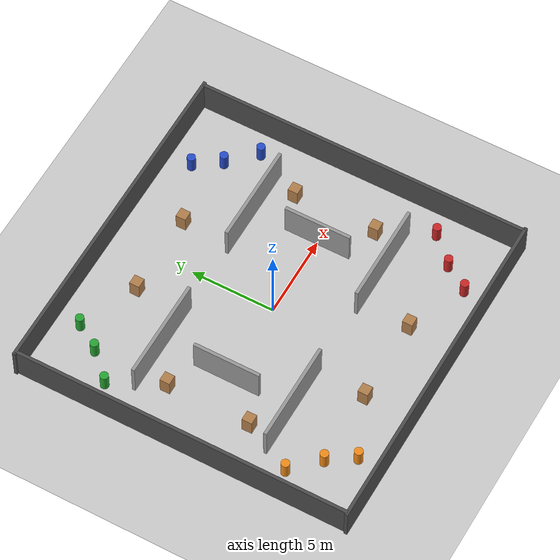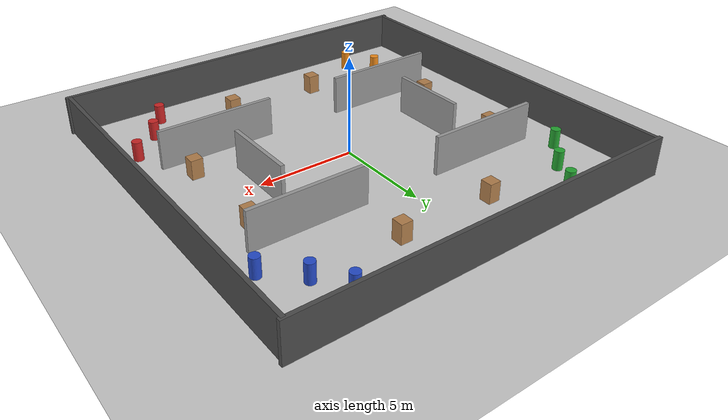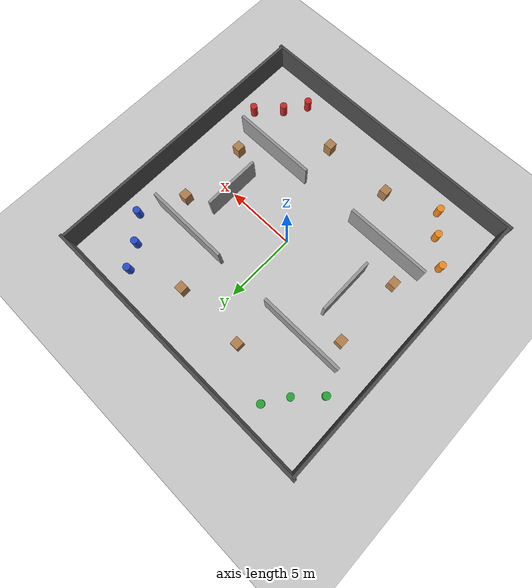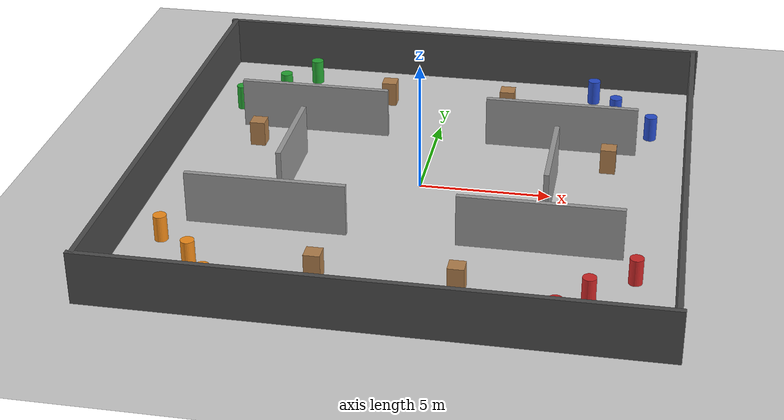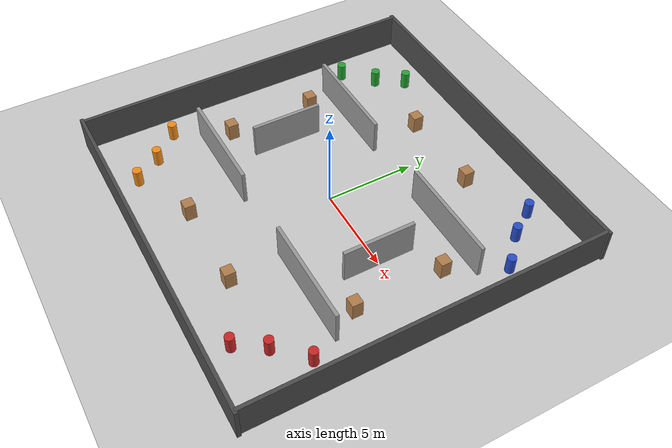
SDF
<?xml version="1.0" ?>
<sdf version="1.6">
  <world name="exploration_world">

    <!-- ═══════════════════════════════════════════════════
         PHYSIQUE & SCÈNE
         ═══════════════════════════════════════════════ -->
    <physics type="ode">
      <real_time_update_rate>1000</real_time_update_rate>
      <max_step_size>0.001</max_step_size>
      <real_time_factor>1</real_time_factor>
      <ode>
        <solver>
          <type>quick</type>
          <iters>150</iters>
          <sor>1.4</sor>
        </solver>
        <constraints>
          <cfm>1e-05</cfm>
          <erp>0.2</erp>
          <contact_max_correcting_vel>2000</contact_max_correcting_vel>
          <contact_surface_layer>0.01</contact_surface_layer>
        </constraints>
      </ode>
    </physics>

    <scene>
      <ambient>0.4 0.4 0.4 1</ambient>
      <background>0.7 0.7 0.7 1</background>
      <shadows>0</shadows>
    </scene>

    <gravity>0 0 -9.8</gravity>
    <atmosphere type="adiabatic"/>
    <wind/>

    <!-- Caméra vue de dessus pour bien voir toute la salle -->
    <gui fullscreen="0">
      <camera name="user_camera">
        <pose>0 0 45 0 1.5707 0</pose>
        <view_controller>orbit</view_controller>
        <projection_type>perspective</projection_type>
      </camera>
    </gui>

    <!-- ═══════════════════════════════════════════════════
         LUMIÈRES
         ═══════════════════════════════════════════════ -->
    <light name="sun" type="directional">
      <cast_shadows>1</cast_shadows>
      <pose>0 0 15 0 0 0</pose>
      <diffuse>0.9 0.9 0.9 1</diffuse>
      <specular>0.2 0.2 0.2 1</specular>
      <attenuation>
        <range>1000</range>
        <constant>0.9</constant>
        <linear>0.01</linear>
        <quadratic>0.001</quadratic>
      </attenuation>
      <direction>-0.3 0.1 -0.9</direction>
    </light>

    <light name="light_center" type="point">
      <pose>0 0 4 0 0 0</pose>
      <diffuse>0.6 0.6 0.6 1</diffuse>
      <specular>0.1 0.1 0.1 1</specular>
      <attenuation>
        <range>30</range>
        <constant>0.5</constant>
        <linear>0.01</linear>
        <quadratic>0.001</quadratic>
      </attenuation>
      <cast_shadows>0</cast_shadows>
    </light>

    <!-- ═══════════════════════════════════════════════════
         SOL
         ═══════════════════════════════════════════════ -->
    <model name="ground_plane">
      <static>1</static>
      <link name="link">
        <collision name="collision">
          <geometry>
            <plane><normal>0 0 1</normal><size>100 100</size></plane>
          </geometry>
          <surface>
            <friction>
              <ode><mu>100</mu><mu2>50</mu2></ode>
            </friction>
          </surface>
        </collision>
        <visual name="visual">
          <cast_shadows>0</cast_shadows>
          <geometry>
            <plane><normal>0 0 1</normal><size>100 100</size></plane>
          </geometry>
          <material>
            <script>
              <uri>file://media/materials/scripts/gazebo.material</uri>
              <name>Gazebo/Grey</name>
            </script>
          </material>
        </visual>
      </link>
    </model>

    <!-- Mur Nord (y = +10) -->
    <model name="wall_north">
      <static>1</static>
      <pose>0 10 1 0 0 0</pose>
      <link name="link">
        <collision name="col">
          <geometry><box><size>20.4 0.2 2</size></box></geometry>
        </collision>
        <visual name="vis">
          <geometry><box><size>20.4 0.2 2</size></box></geometry>
          <material><script>
            <uri>file://media/materials/scripts/gazebo.material</uri>
            <name>Gazebo/DarkGrey</name>
          </script></material>
        </visual>
      </link>
    </model>

    <!-- Mur Sud (y = -10) -->
    <model name="wall_south">
      <static>1</static>
      <pose>0 -10 1 0 0 0</pose>
      <link name="link">
        <collision name="col">
          <geometry><box><size>20.4 0.2 2</size></box></geometry>
        </collision>
        <visual name="vis">
          <geometry><box><size>20.4 0.2 2</size></box></geometry>
          <material><script>
            <uri>file://media/materials/scripts/gazebo.material</uri>
            <name>Gazebo/DarkGrey</name>
          </script></material>
        </visual>
      </link>
    </model>

    <!-- Mur Est (x = +10) -->
    <model name="wall_east">
      <static>1</static>
      <pose>10 0 1 0 0 0</pose>
      <link name="link">
        <collision name="col">
          <geometry><box><size>0.2 20 2</size></box></geometry>
        </collision>
        <visual name="vis">
          <geometry><box><size>0.2 20 2</size></box></geometry>
          <material><script>
            <uri>file://media/materials/scripts/gazebo.material</uri>
            <name>Gazebo/DarkGrey</name>
          </script></material>
        </visual>
      </link>
    </model>

    <!-- Mur Ouest (x = -10) -->
    <model name="wall_west">
      <static>1</static>
      <pose>-10 0 1 0 0 0</pose>
      <link name="link">
        <collision name="col">
          <geometry><box><size>0.2 20 2</size></box></geometry>
        </collision>
        <visual name="vis">
          <geometry><box><size>0.2 20 2</size></box></geometry>
          <material><script>
            <uri>file://media/materials/scripts/gazebo.material</uri>
            <name>Gazebo/DarkGrey</name>
          </script></material>
        </visual>
      </link>
    </model>

    <!-- Cloison NE horizontale (y=4, de x=2 à x=8) — ouverture à x<2 -->
    <model name="wall_int_ne_h">
      <static>1</static>
      <pose>5 4 1 0 0 0</pose>
      <link name="link">
        <collision name="col">
          <geometry><box><size>6 0.2 2</size></box></geometry>
        </collision>
        <visual name="vis">
          <geometry><box><size>6 0.2 2</size></box></geometry>
          <material><script>
            <uri>file://media/materials/scripts/gazebo.material</uri>
            <name>Gazebo/Grey</name>
          </script></material>
        </visual>
      </link>
    </model>

    <!-- Cloison NW horizontale (y=4, de x=-8 à x=-2) — ouverture à x>-2 -->
    <model name="wall_int_nw_h">
      <static>1</static>
      <pose>-5 4 1 0 0 0</pose>
      <link name="link">
        <collision name="col">
          <geometry><box><size>6 0.2 2</size></box></geometry>
        </collision>
        <visual name="vis">
          <geometry><box><size>6 0.2 2</size></box></geometry>
          <material><script>
            <uri>file://media/materials/scripts/gazebo.material</uri>
            <name>Gazebo/Grey</name>
          </script></material>
        </visual>
      </link>
    </model>

    <!-- Cloison SE horizontale (y=-4, de x=2 à x=8) — ouverture à x<2 -->
    <model name="wall_int_se_h">
      <static>1</static>
      <pose>5 -4 1 0 0 0</pose>
      <link name="link">
        <collision name="col">
          <geometry><box><size>6 0.2 2</size></box></geometry>
        </collision>
        <visual name="vis">
          <geometry><box><size>6 0.2 2</size></box></geometry>
          <material><script>
            <uri>file://media/materials/scripts/gazebo.material</uri>
            <name>Gazebo/Grey</name>
          </script></material>
        </visual>
      </link>
    </model>

    <!-- Cloison SW horizontale (y=-4, de x=-8 à x=-2) — ouverture à x>-2 -->
    <model name="wall_int_sw_h">
      <static>1</static>
      <pose>-5 -4 1 0 0 0</pose>
      <link name="link">
        <collision name="col">
          <geometry><box><size>6 0.2 2</size></box></geometry>
        </collision>
        <visual name="vis">
          <geometry><box><size>6 0.2 2</size></box></geometry>
          <material><script>
            <uri>file://media/materials/scripts/gazebo.material</uri>
            <name>Gazebo/Grey</name>
          </script></material>
        </visual>
      </link>
    </model>

    <!-- Cloison verticale Est (x=5, de y=-2 à y=2) — couloir central -->
    <model name="wall_int_e_v">
      <static>1</static>
      <pose>5 0 1 0 0 0</pose>
      <link name="link">
        <collision name="col">
          <geometry><box><size>0.2 4 2</size></box></geometry>
        </collision>
        <visual name="vis">
          <geometry><box><size>0.2 4 2</size></box></geometry>
          <material><script>
            <uri>file://media/materials/scripts/gazebo.material</uri>
            <name>Gazebo/Grey</name>
          </script></material>
        </visual>
      </link>
    </model>

    <!-- Cloison verticale Ouest (x=-5, de y=-2 à y=2) — couloir central -->
    <model name="wall_int_w_v">
      <static>1</static>
      <pose>-5 0 1 0 0 0</pose>
      <link name="link">
        <collision name="col">
          <geometry><box><size>0.2 4 2</size></box></geometry>
        </collision>
        <visual name="vis">
          <geometry><box><size>0.2 4 2</size></box></geometry>
          <material><script>
            <uri>file://media/materials/scripts/gazebo.material</uri>
            <name>Gazebo/Grey</name>
          </script></material>
        </visual>
      </link>
    </model>

    <!-- Salle Nord-Est -->
    <model name="col_ne_a">
      <static>1</static>
      <pose>7 7 0.5 0 0 0</pose>
      <link name="link">
        <collision name="col">
          <geometry><cylinder><radius>0.25</radius><length>1</length></cylinder></geometry>
        </collision>
        <visual name="vis">
          <geometry><cylinder><radius>0.25</radius><length>1</length></cylinder></geometry>
          <material><script>
            <uri>file://media/materials/scripts/gazebo.material</uri>
            <name>Gazebo/Blue</name>
          </script></material>
        </visual>
      </link>
    </model>

    <model name="col_ne_b">
      <static>1</static>
      <pose>8.5 5.5 0.5 0 0 0</pose>
      <link name="link">
        <collision name="col">
          <geometry><cylinder><radius>0.25</radius><length>1</length></cylinder></geometry>
        </collision>
        <visual name="vis">
          <geometry><cylinder><radius>0.25</radius><length>1</length></cylinder></geometry>
          <material><script>
            <uri>file://media/materials/scripts/gazebo.material</uri>
            <name>Gazebo/Blue</name>
          </script></material>
        </visual>
      </link>
    </model>

    <model name="col_ne_c">
      <static>1</static>
      <pose>6 8.5 0.5 0 0 0</pose>
      <link name="link">
        <collision name="col">
          <geometry><cylinder><radius>0.25</radius><length>1</length></cylinder></geometry>
        </collision>
        <visual name="vis">
          <geometry><cylinder><radius>0.25</radius><length>1</length></cylinder></geometry>
          <material><script>
            <uri>file://media/materials/scripts/gazebo.material</uri>
            <name>Gazebo/Blue</name>
          </script></material>
        </visual>
      </link>
    </model>

    <!-- Salle Nord-Ouest -->
    <model name="col_nw_a">
      <static>1</static>
      <pose>-7 7 0.5 0 0 0</pose>
      <link name="link">
        <collision name="col">
          <geometry><cylinder><radius>0.25</radius><length>1</length></cylinder></geometry>
        </collision>
        <visual name="vis">
          <geometry><cylinder><radius>0.25</radius><length>1</length></cylinder></geometry>
          <material><script>
            <uri>file://media/materials/scripts/gazebo.material</uri>
            <name>Gazebo/Green</name>
          </script></material>
        </visual>
      </link>
    </model>

    <model name="col_nw_b">
      <static>1</static>
      <pose>-8.5 5.5 0.5 0 0 0</pose>
      <link name="link">
        <collision name="col">
          <geometry><cylinder><radius>0.25</radius><length>1</length></cylinder></geometry>
        </collision>
        <visual name="vis">
          <geometry><cylinder><radius>0.25</radius><length>1</length></cylinder></geometry>
          <material><script>
            <uri>file://media/materials/scripts/gazebo.material</uri>
            <name>Gazebo/Green</name>
          </script></material>
        </visual>
      </link>
    </model>

    <model name="col_nw_c">
      <static>1</static>
      <pose>-6 8.5 0.5 0 0 0</pose>
      <link name="link">
        <collision name="col">
          <geometry><cylinder><radius>0.25</radius><length>1</length></cylinder></geometry>
        </collision>
        <visual name="vis">
          <geometry><cylinder><radius>0.25</radius><length>1</length></cylinder></geometry>
          <material><script>
            <uri>file://media/materials/scripts/gazebo.material</uri>
            <name>Gazebo/Green</name>
          </script></material>
        </visual>
      </link>
    </model>

    <!-- Salle Sud-Est -->
    <model name="col_se_a">
      <static>1</static>
      <pose>7 -7 0.5 0 0 0</pose>
      <link name="link">
        <collision name="col">
          <geometry><cylinder><radius>0.25</radius><length>1</length></cylinder></geometry>
        </collision>
        <visual name="vis">
          <geometry><cylinder><radius>0.25</radius><length>1</length></cylinder></geometry>
          <material><script>
            <uri>file://media/materials/scripts/gazebo.material</uri>
            <name>Gazebo/Red</name>
          </script></material>
        </visual>
      </link>
    </model>

    <model name="col_se_b">
      <static>1</static>
      <pose>8.5 -5.5 0.5 0 0 0</pose>
      <link name="link">
        <collision name="col">
          <geometry><cylinder><radius>0.25</radius><length>1</length></cylinder></geometry>
        </collision>
        <visual name="vis">
          <geometry><cylinder><radius>0.25</radius><length>1</length></cylinder></geometry>
          <material><script>
            <uri>file://media/materials/scripts/gazebo.material</uri>
            <name>Gazebo/Red</name>
          </script></material>
        </visual>
      </link>
    </model>

    <model name="col_se_c">
      <static>1</static>
      <pose>6 -8.5 0.5 0 0 0</pose>
      <link name="link">
        <collision name="col">
          <geometry><cylinder><radius>0.25</radius><length>1</length></cylinder></geometry>
        </collision>
        <visual name="vis">
          <geometry><cylinder><radius>0.25</radius><length>1</length></cylinder></geometry>
          <material><script>
            <uri>file://media/materials/scripts/gazebo.material</uri>
            <name>Gazebo/Red</name>
          </script></material>
        </visual>
      </link>
    </model>

    <!-- Salle Sud-Ouest -->
    <model name="col_sw_a">
      <static>1</static>
      <pose>-7 -7 0.5 0 0 0</pose>
      <link name="link">
        <collision name="col">
          <geometry><cylinder><radius>0.25</radius><length>1</length></cylinder></geometry>
        </collision>
        <visual name="vis">
          <geometry><cylinder><radius>0.25</radius><length>1</length></cylinder></geometry>
          <material><script>
            <uri>file://media/materials/scripts/gazebo.material</uri>
            <name>Gazebo/Orange</name>
          </script></material>
        </visual>
      </link>
    </model>

    <model name="col_sw_b">
      <static>1</static>
      <pose>-8.5 -5.5 0.5 0 0 0</pose>
      <link name="link">
        <collision name="col">
          <geometry><cylinder><radius>0.25</radius><length>1</length></cylinder></geometry>
        </collision>
        <visual name="vis">
          <geometry><cylinder><radius>0.25</radius><length>1</length></cylinder></geometry>
          <material><script>
            <uri>file://media/materials/scripts/gazebo.material</uri>
            <name>Gazebo/Orange</name>
          </script></material>
        </visual>
      </link>
    </model>

    <model name="col_sw_c">
      <static>1</static>
      <pose>-6 -8.5 0.5 0 0 0</pose>
      <link name="link">
        <collision name="col">
          <geometry><cylinder><radius>0.25</radius><length>1</length></cylinder></geometry>
        </collision>
        <visual name="vis">
          <geometry><cylinder><radius>0.25</radius><length>1</length></cylinder></geometry>
          <material><script>
            <uri>file://media/materials/scripts/gazebo.material</uri>
            <name>Gazebo/Orange</name>
          </script></material>
        </visual>
      </link>
    </model>

    <!-- Boîtes dans couloir Nord (entre y=4 et y=10, x proche 0) -->
    <model name="box_corridor_n1">
      <static>1</static>
      <pose>2.5 7 0.5 0 0 0</pose>
      <link name="link">
        <collision name="col">
          <geometry><box><size>0.6 0.6 1</size></box></geometry>
        </collision>
        <visual name="vis">
          <geometry><box><size>0.6 0.6 1</size></box></geometry>
          <material><script>
            <uri>file://media/materials/scripts/gazebo.material</uri>
            <name>Gazebo/WoodPallet</name>
          </script></material>
        </visual>
      </link>
    </model>

    <model name="box_corridor_n2">
      <static>1</static>
      <pose>-2.5 7 0.5 0 0 0</pose>
      <link name="link">
        <collision name="col">
          <geometry><box><size>0.6 0.6 1</size></box></geometry>
        </collision>
        <visual name="vis">
          <geometry><box><size>0.6 0.6 1</size></box></geometry>
          <material><script>
            <uri>file://media/materials/scripts/gazebo.material</uri>
            <name>Gazebo/WoodPallet</name>
          </script></material>
        </visual>
      </link>
    </model>

    <!-- Boîtes dans couloir Sud -->
    <model name="box_corridor_s1">
      <static>1</static>
      <pose>2.5 -7 0.5 0 0 0</pose>
      <link name="link">
        <collision name="col">
          <geometry><box><size>0.6 0.6 1</size></box></geometry>
        </collision>
        <visual name="vis">
          <geometry><box><size>0.6 0.6 1</size></box></geometry>
          <material><script>
            <uri>file://media/materials/scripts/gazebo.material</uri>
            <name>Gazebo/WoodPallet</name>
          </script></material>
        </visual>
      </link>
    </model>

    <model name="box_corridor_s2">
      <static>1</static>
      <pose>-2.5 -7 0.5 0 0 0</pose>
      <link name="link">
        <collision name="col">
          <geometry><box><size>0.6 0.6 1</size></box></geometry>
        </collision>
        <visual name="vis">
          <geometry><box><size>0.6 0.6 1</size></box></geometry>
          <material><script>
            <uri>file://media/materials/scripts/gazebo.material</uri>
            <name>Gazebo/WoodPallet</name>
          </script></material>
        </visual>
      </link>
    </model>

    <!-- Boîtes dans couloir Est -->
    <model name="box_corridor_e1">
      <static>1</static>
      <pose>7 2.5 0.5 0 0 0</pose>
      <link name="link">
        <collision name="col">
          <geometry><box><size>0.6 0.6 1</size></box></geometry>
        </collision>
        <visual name="vis">
          <geometry><box><size>0.6 0.6 1</size></box></geometry>
          <material><script>
            <uri>file://media/materials/scripts/gazebo.material</uri>
            <name>Gazebo/WoodPallet</name>
          </script></material>
        </visual>
      </link>
    </model>

    <model name="box_corridor_e2">
      <static>1</static>
      <pose>7 -2.5 0.5 0 0 0</pose>
      <link name="link">
        <collision name="col">
          <geometry><box><size>0.6 0.6 1</size></box></geometry>
        </collision>
        <visual name="vis">
          <geometry><box><size>0.6 0.6 1</size></box></geometry>
          <material><script>
            <uri>file://media/materials/scripts/gazebo.material</uri>
            <name>Gazebo/WoodPallet</name>
          </script></material>
        </visual>
      </link>
    </model>

    <!-- Boîtes dans couloir Ouest -->
    <model name="box_corridor_w1">
      <static>1</static>
      <pose>-7 2.5 0.5 0 0 0</pose>
      <link name="link">
        <collision name="col">
          <geometry><box><size>0.6 0.6 1</size></box></geometry>
        </collision>
        <visual name="vis">
          <geometry><box><size>0.6 0.6 1</size></box></geometry>
          <material><script>
            <uri>file://media/materials/scripts/gazebo.material</uri>
            <name>Gazebo/WoodPallet</name>
          </script></material>
        </visual>
      </link>
    </model>

    <model name="box_corridor_w2">
      <static>1</static>
      <pose>-7 -2.5 0.5 0 0 0</pose>
      <link name="link">
        <collision name="col">
          <geometry><box><size>0.6 0.6 1</size></box></geometry>
        </collision>
        <visual name="vis">
          <geometry><box><size>0.6 0.6 1</size></box></geometry>
          <material><script>
            <uri>file://media/materials/scripts/gazebo.material</uri>
            <name>Gazebo/WoodPallet</name>
          </script></material>
        </visual>
      </link>
    </model>

  </world>
</sdf>
